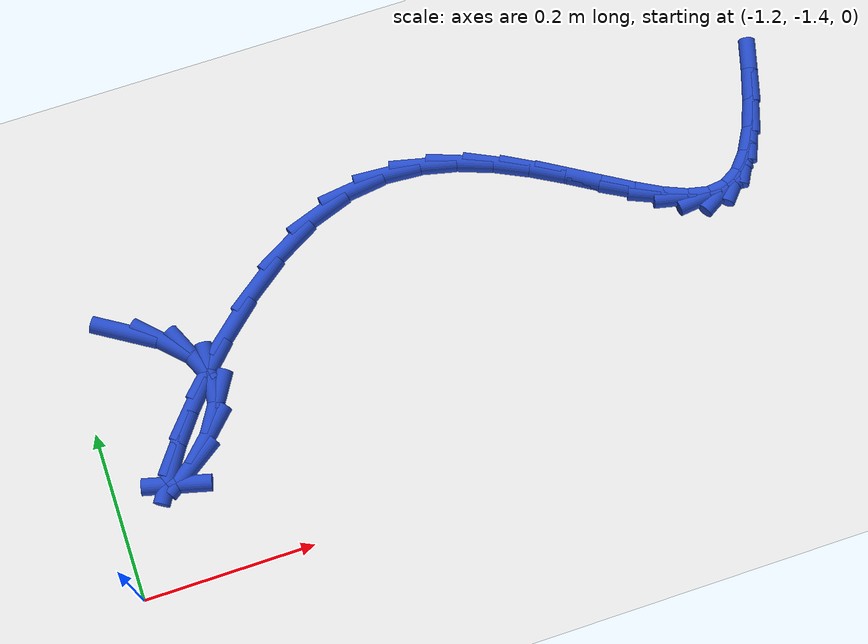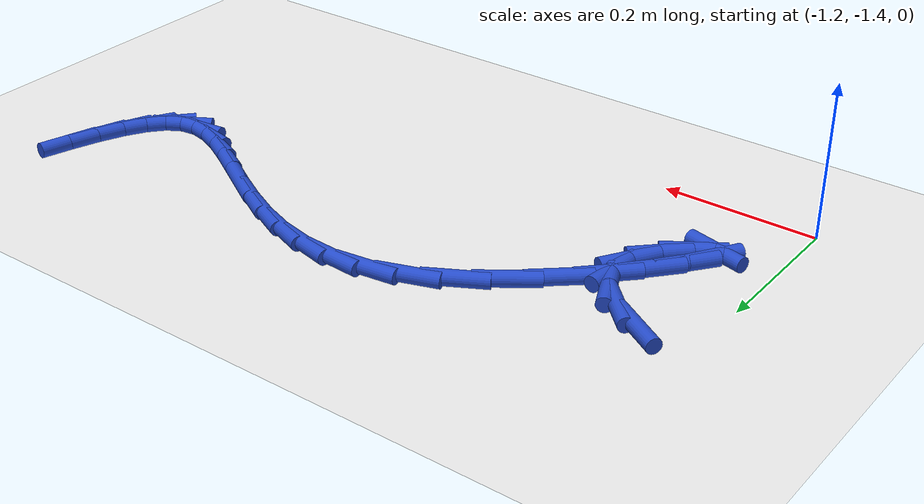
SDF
<sdf version="1.6">
 <world name="default">
  <model name="ground_plane">
   <static>1</static>
   <link name="link">
    <collision name="collision">
     <geometry><plane><normal>0 0 1</normal><size>100 100</size></plane></geometry>
     <surface><friction><ode><mu>100</mu><mu2>50</mu2></ode></friction></surface>
    </collision>
    <visual name="visual">
     <cast_shadows>0</cast_shadows>
     <geometry><plane><normal>0 0 1</normal><size>100 100</size></plane></geometry>
     <material>
      <script><uri>file://media/materials/scripts/gazebo.material</uri><name>Gazebo/WhiteGlow</name></script>
     </material>
    </visual>
   </link>
  </model>
  <model name="line">
   <link name="link_208">
    <pose>-1.1342543918073766 -1.0970284678272373 0.01 0 1.57 -0.5603026188784264</pose>
    <collision name="collision">
     <geometry><cylinder><radius>0.01</radius><length>0.08</length></cylinder></geometry>
    </collision>
    <visual name="visual">
     <material>
      <script><name>Gazebo/Blue</name><uri>file://media/materials/scripts/gazebo.material</uri></script>
     </material>
     <geometry><cylinder><radius>0.01</radius><length>0.08</length></cylinder></geometry>
    </visual>
   </link>
   <link name="link_209">
    <pose>-1.096617735630286 -1.1206406213390705 0.01 0 1.57 -0.7941471250035296</pose>
    <collision name="collision">
     <geometry><cylinder><radius>0.01</radius><length>0.08</length></cylinder></geometry>
    </collision>
    <visual name="visual">
     <material>
      <script><name>Gazebo/Blue</name><uri>file://media/materials/scripts/gazebo.material</uri></script>
     </material>
     <geometry><cylinder><radius>0.01</radius><length>0.08</length></cylinder></geometry>
    </visual>
   </link>
   <link name="link_210">
    <pose>-1.0695944447547516 -1.1481409494351724 0.01 0 1.57 -1.1514216317182593</pose>
    <collision name="collision">
     <geometry><cylinder><radius>0.01</radius><length>0.08</length></cylinder></geometry>
    </collision>
    <visual name="visual">
     <material>
      <script><name>Gazebo/Blue</name><uri>file://media/materials/scripts/gazebo.material</uri></script>
     </material>
     <geometry><cylinder><radius>0.01</radius><length>0.08</length></cylinder></geometry>
    </visual>
   </link>
   <link name="link_211">
    <pose>-1.0559744984766621 -1.178691086998371 0.01 0 1.57 1.492408639524627</pose>
    <collision name="collision">
     <geometry><cylinder><radius>0.01</radius><length>0.08</length></cylinder></geometry>
    </collision>
    <visual name="visual">
     <material>
      <script><name>Gazebo/Blue</name><uri>file://media/materials/scripts/gazebo.material</uri></script>
     </material>
     <geometry><cylinder><radius>0.01</radius><length>0.08</length></cylinder></geometry>
    </visual>
   </link>
   <link name="link_212">
    <pose>-1.0585478760919094 -1.211452668911493 0.01 0 1.57 1.0314952925773364</pose>
    <collision name="collision">
     <geometry><cylinder><radius>0.01</radius><length>0.08</length></cylinder></geometry>
    </collision>
    <visual name="visual">
     <material>
      <script><name>Gazebo/Blue</name><uri>file://media/materials/scripts/gazebo.material</uri></script>
     </material>
     <geometry><cylinder><radius>0.01</radius><length>0.08</length></cylinder></geometry>
    </visual>
   </link>
   <link name="link_213">
    <pose>-1.0785935354494112 -1.2449469586422726 0.01 0 1.57 0.790767604849427</pose>
    <collision name="collision">
     <geometry><cylinder><radius>0.01</radius><length>0.08</length></cylinder></geometry>
    </collision>
    <visual name="visual">
     <material>
      <script><name>Gazebo/Blue</name><uri>file://media/materials/scripts/gazebo.material</uri></script>
     </material>
     <geometry><cylinder><radius>0.01</radius><length>0.08</length></cylinder></geometry>
    </visual>
   </link>
   <link name="link_214">
    <pose>-1.1063724380838378 -1.2730257889859664 0.01 0 1.57 0.6049885973328921</pose>
    <collision name="collision">
     <geometry><cylinder><radius>0.01</radius><length>0.08</length></cylinder></geometry>
    </collision>
    <visual name="visual">
     <material>
      <script><name>Gazebo/Blue</name><uri>file://media/materials/scripts/gazebo.material</uri></script>
     </material>
     <geometry><cylinder><radius>0.01</radius><length>0.08</length></cylinder></geometry>
    </visual>
   </link>
   <link name="link_215">
    <pose>-1.1275071463081574 -1.2876401316958577 0.01 0 1.57 -0.2515229578689082</pose>
    <collision name="collision">
     <geometry><cylinder><radius>0.01</radius><length>0.08</length></cylinder></geometry>
    </collision>
    <visual name="visual">
     <material>
      <script><name>Gazebo/Blue</name><uri>file://media/materials/scripts/gazebo.material</uri></script>
     </material>
     <geometry><cylinder><radius>0.01</radius><length>0.08</length></cylinder></geometry>
    </visual>
   </link>
   <link name="link_217">
    <pose>-1.1296110103170298 -1.2700949534111823 0.01 0 1.57 1.0206371657522777</pose>
    <collision name="collision">
     <geometry><cylinder><radius>0.01</radius><length>0.08</length></cylinder></geometry>
    </collision>
    <visual name="visual">
     <material>
      <script><name>Gazebo/Blue</name><uri>file://media/materials/scripts/gazebo.material</uri></script>
     </material>
     <geometry><cylinder><radius>0.01</radius><length>0.08</length></cylinder></geometry>
    </visual>
   </link>
   <link name="link_218">
    <pose>-1.11343461227232 -1.2437199996573194 0.01 0 1.57 0.9287772279186192</pose>
    <collision name="collision">
     <geometry><cylinder><radius>0.01</radius><length>0.08</length></cylinder></geometry>
    </collision>
    <visual name="visual">
     <material>
      <script><name>Gazebo/Blue</name><uri>file://media/materials/scripts/gazebo.material</uri></script>
     </material>
     <geometry><cylinder><radius>0.01</radius><length>0.08</length></cylinder></geometry>
    </visual>
   </link>
   <link name="link_219">
    <pose>-1.087982471433947 -1.209678825660896 0.01 0 1.57 0.8631115667853644</pose>
    <collision name="collision">
     <geometry><cylinder><radius>0.01</radius><length>0.08</length></cylinder></geometry>
    </collision>
    <visual name="visual">
     <material>
      <script><name>Gazebo/Blue</name><uri>file://media/materials/scripts/gazebo.material</uri></script>
     </material>
     <geometry><cylinder><radius>0.01</radius><length>0.08</length></cylinder></geometry>
    </visual>
   </link>
   <link name="link_220">
    <pose>-1.054911945731234 -1.1710229485457504 0.01 0 1.57 0.800381284939154</pose>
    <collision name="collision">
     <geometry><cylinder><radius>0.01</radius><length>0.08</length></cylinder></geometry>
    </collision>
    <visual name="visual">
     <material>
      <script><name>Gazebo/Blue</name><uri>file://media/materials/scripts/gazebo.material</uri></script>
     </material>
     <geometry><cylinder><radius>0.01</radius><length>0.08</length></cylinder></geometry>
    </visual>
   </link>
   <link name="link_221">
    <pose>-1.0158803930935076 -1.1308038854357259 0.01 0 1.57 0.729349742640319</pose>
    <collision name="collision">
     <geometry><cylinder><radius>0.01</radius><length>0.08</length></cylinder></geometry>
    </collision>
    <visual name="visual">
     <material>
      <script><name>Gazebo/Blue</name><uri>file://media/materials/scripts/gazebo.material</uri></script>
     </material>
     <geometry><cylinder><radius>0.01</radius><length>0.08</length></cylinder></geometry>
    </visual>
   </link>
   <link name="link_222">
    <pose>-0.9725451714500905 -1.0920731534546606 0.01 0 1.57 0.6393787298168541</pose>
    <collision name="collision">
     <geometry><cylinder><radius>0.01</radius><length>0.08</length></cylinder></geometry>
    </collision>
    <visual name="visual">
     <material>
      <script><name>Gazebo/Blue</name><uri>file://media/materials/scripts/gazebo.material</uri></script>
     </material>
     <geometry><cylinder><radius>0.01</radius><length>0.08</length></cylinder></geometry>
    </visual>
   </link>
   <link name="link_223">
    <pose>-0.9265636387303101 -1.0578822697263988 0.01 0 1.57 0.5152735508346965</pose>
    <collision name="collision">
     <geometry><cylinder><radius>0.01</radius><length>0.08</length></cylinder></geometry>
    </collision>
    <visual name="visual">
     <material>
      <script><name>Gazebo/Blue</name><uri>file://media/materials/scripts/gazebo.material</uri></script>
     </material>
     <geometry><cylinder><radius>0.01</radius><length>0.08</length></cylinder></geometry>
    </visual>
   </link>
   <link name="link_224">
    <pose>-0.8795931528634882 -1.0312827513747782 0.01 0 1.57 0.3364772931224426</pose>
    <collision name="collision">
     <geometry><cylinder><radius>0.01</radius><length>0.08</length></cylinder></geometry>
    </collision>
    <visual name="visual">
     <material>
      <script><name>Gazebo/Blue</name><uri>file://media/materials/scripts/gazebo.material</uri></script>
     </material>
     <geometry><cylinder><radius>0.01</radius><length>0.08</length></cylinder></geometry>
    </visual>
   </link>
   <link name="link_225">
    <pose>-0.8332044217756425 -1.0150569802425076 0.01 0 1.57 0.12912181666007655</pose>
    <collision name="collision">
     <geometry><cylinder><radius>0.01</radius><length>0.08</length></cylinder></geometry>
    </collision>
    <visual name="visual">
     <material>
      <script><name>Gazebo/Blue</name><uri>file://media/materials/scripts/gazebo.material</uri></script>
     </material>
     <geometry><cylinder><radius>0.01</radius><length>0.08</length></cylinder></geometry>
    </visual>
   </link>
   <link name="link_226">
    <pose>-0.7880696190569849 -1.0091964866796577 0.01 0 1.57 -0.06493284704297393</pose>
    <collision name="collision">
     <geometry><cylinder><radius>0.01</radius><length>0.08</length></cylinder></geometry>
    </collision>
    <visual name="visual">
     <material>
      <script><name>Gazebo/Blue</name><uri>file://media/materials/scripts/gazebo.material</uri></script>
     </material>
     <geometry><cylinder><radius>0.01</radius><length>0.08</length></cylinder></geometry>
    </visual>
   </link>
   <link name="link_227">
    <pose>-0.7443290086769403 -1.0120406874776178 0.01 0 1.57 -0.2296141587684884</pose>
    <collision name="collision">
     <geometry><cylinder><radius>0.01</radius><length>0.08</length></cylinder></geometry>
    </collision>
    <visual name="visual">
     <material>
      <script><name>Gazebo/Blue</name><uri>file://media/materials/scripts/gazebo.material</uri></script>
     </material>
     <geometry><cylinder><radius>0.01</radius><length>0.08</length></cylinder></geometry>
    </visual>
   </link>
   <link name="link_228">
    <pose>-0.7021159087857479 -1.0219074256836453 0.01 0 1.57 -0.3587710365409418</pose>
    <collision name="collision">
     <geometry><cylinder><radius>0.01</radius><length>0.08</length></cylinder></geometry>
    </collision>
    <visual name="visual">
     <material>
      <script><name>Gazebo/Blue</name><uri>file://media/materials/scripts/gazebo.material</uri></script>
     </material>
     <geometry><cylinder><radius>0.01</radius><length>0.08</length></cylinder></geometry>
    </visual>
   </link>
   <link name="link_229">
    <pose>-0.6615636375336418 -1.0371145443449994 0.01 0 1.57 -0.4529878843886531</pose>
    <collision name="collision">
     <geometry><cylinder><radius>0.01</radius><length>0.08</length></cylinder></geometry>
    </collision>
    <visual name="visual">
     <material>
      <script><name>Gazebo/Blue</name><uri>file://media/materials/scripts/gazebo.material</uri></script>
     </material>
     <geometry><cylinder><radius>0.01</radius><length>0.08</length></cylinder></geometry>
    </visual>
   </link>
   <link name="link_230">
    <pose>-0.6228055130708612 -1.0559798865089374 0.01 0 1.57 -0.5149466663959301</pose>
    <collision name="collision">
     <geometry><cylinder><radius>0.01</radius><length>0.08</length></cylinder></geometry>
    </collision>
    <visual name="visual">
     <material>
      <script><name>Gazebo/Blue</name><uri>file://media/materials/scripts/gazebo.material</uri></script>
     </material>
     <geometry><cylinder><radius>0.01</radius><length>0.08</length></cylinder></geometry>
    </visual>
   </link>
   <link name="link_231">
    <pose>-0.5859748535476399 -1.0768212952227174 0.01 0 1.57 -0.5461810023948789</pose>
    <collision name="collision">
     <geometry><cylinder><radius>0.01</radius><length>0.08</length></cylinder></geometry>
    </collision>
    <visual name="visual">
     <material>
      <script><name>Gazebo/Blue</name><uri>file://media/materials/scripts/gazebo.material</uri></script>
     </material>
     <geometry><cylinder><radius>0.01</radius><length>0.08</length></cylinder></geometry>
    </visual>
   </link>
   <link name="link_232">
    <pose>-0.5512049771142169 -1.097956613533597 0.01 0 1.57 -0.5449576862633349</pose>
    <collision name="collision">
     <geometry><cylinder><radius>0.01</radius><length>0.08</length></cylinder></geometry>
    </collision>
    <visual name="visual">
     <material>
      <script><name>Gazebo/Blue</name><uri>file://media/materials/scripts/gazebo.material</uri></script>
     </material>
     <geometry><cylinder><radius>0.01</radius><length>0.08</length></cylinder></geometry>
    </visual>
   </link>
   <link name="link_233">
    <pose>-0.5186292019208267 -1.1177036844888357 0.01 0 1.57 -0.5038597104270608</pose>
    <collision name="collision">
     <geometry><cylinder><radius>0.01</radius><length>0.08</length></cylinder></geometry>
    </collision>
    <visual name="visual">
     <material>
      <script><name>Gazebo/Blue</name><uri>file://media/materials/scripts/gazebo.material</uri></script>
     </material>
     <geometry><cylinder><radius>0.01</radius><length>0.08</length></cylinder></geometry>
    </visual>
   </link>
   <link name="link_234">
    <pose>-0.4883808461177081 -1.13438035113569 0.01 0 1.57 -0.40535157571427266</pose>
    <collision name="collision">
     <geometry><cylinder><radius>0.01</radius><length>0.08</length></cylinder></geometry>
    </collision>
    <visual name="visual">
     <material>
      <script><name>Gazebo/Blue</name><uri>file://media/materials/scripts/gazebo.material</uri></script>
     </material>
     <geometry><cylinder><radius>0.01</radius><length>0.08</length></cylinder></geometry>
    </visual>
   </link>
   <link name="link_235">
    <pose>-0.46059322785509615 -1.1463044565214187 0.01 0 1.57 -0.2145353789104227</pose>
    <collision name="collision">
     <geometry><cylinder><radius>0.01</radius><length>0.08</length></cylinder></geometry>
    </collision>
    <visual name="visual">
     <material>
      <script><name>Gazebo/Blue</name><uri>file://media/materials/scripts/gazebo.material</uri></script>
     </material>
     <geometry><cylinder><radius>0.01</radius><length>0.08</length></cylinder></geometry>
    </visual>
   </link>
   <link name="link_236">
    <pose>-0.4353996652832271 -1.15179384369328 0.01 0 1.57 0.11636151599918443</pose>
    <collision name="collision">
     <geometry><cylinder><radius>0.01</radius><length>0.08</length></cylinder></geometry>
    </collision>
    <visual name="visual">
     <material>
      <script><name>Gazebo/Blue</name><uri>file://media/materials/scripts/gazebo.material</uri></script>
     </material>
     <geometry><cylinder><radius>0.01</radius><length>0.08</length></cylinder></geometry>
    </visual>
   </link>
   <link name="link_237">
    <pose>-0.4129332205311321 -1.1491677509762985 0.01 0 1.57 0.5357618753375927</pose>
    <collision name="collision">
     <geometry><cylinder><radius>0.01</radius><length>0.08</length></cylinder></geometry>
    </collision>
    <visual name="visual">
     <material>
      <script><name>Gazebo/Blue</name><uri>file://media/materials/scripts/gazebo.material</uri></script>
     </material>
     <geometry><cylinder><radius>0.01</radius><length>0.08</length></cylinder></geometry>
    </visual>
   </link>
   <link name="link_238">
    <pose>-0.39319749119207315 -1.1374509792961307 0.01 0 1.57 0.8548176192833911</pose>
    <collision name="collision">
     <geometry><cylinder><radius>0.01</radius><length>0.08</length></cylinder></geometry>
    </collision>
    <visual name="visual">
     <material>
      <script><name>Gazebo/Blue</name><uri>file://media/materials/scripts/gazebo.material</uri></script>
     </material>
     <geometry><cylinder><radius>0.01</radius><length>0.08</length></cylinder></geometry>
    </visual>
   </link>
   <link name="link_239">
    <pose>-0.3758565994506485 -1.1175184204219988 0.01 0 1.57 1.0537979569971085</pose>
    <collision name="collision">
     <geometry><cylinder><radius>0.01</radius><length>0.08</length></cylinder></geometry>
    </collision>
    <visual name="visual">
     <material>
      <script><name>Gazebo/Blue</name><uri>file://media/materials/scripts/gazebo.material</uri></script>
     </material>
     <geometry><cylinder><radius>0.01</radius><length>0.08</length></cylinder></geometry>
    </visual>
   </link>
   <link name="link_240">
    <pose>-0.36051970100057257 -1.0905445253809876 0.01 0 1.57 1.17496547493378</pose>
    <collision name="collision">
     <geometry><cylinder><radius>0.01</radius><length>0.08</length></cylinder></geometry>
    </collision>
    <visual name="visual">
     <material>
      <script><name>Gazebo/Blue</name><uri>file://media/materials/scripts/gazebo.material</uri></script>
     </material>
     <geometry><cylinder><radius>0.01</radius><length>0.08</length></cylinder></geometry>
    </visual>
   </link>
   <link name="link_241">
    <pose>-0.3467959515355616 -1.0577037452001856 0.01 0 1.57 1.2492766251817071</pose>
    <collision name="collision">
     <geometry><cylinder><radius>0.01</radius><length>0.08</length></cylinder></geometry>
    </collision>
    <visual name="visual">
     <material>
      <script><name>Gazebo/Blue</name><uri>file://media/materials/scripts/gazebo.material</uri></script>
     </material>
     <geometry><cylinder><radius>0.01</radius><length>0.08</length></cylinder></geometry>
    </visual>
   </link>
   <link name="link_242">
    <pose>-0.33429450674933003 -1.020170530906677 0.01 0 1.57 1.2938243337368047</pose>
    <collision name="collision">
     <geometry><cylinder><radius>0.01</radius><length>0.08</length></cylinder></geometry>
    </collision>
    <visual name="visual">
     <material>
      <script><name>Gazebo/Blue</name><uri>file://media/materials/scripts/gazebo.material</uri></script>
     </material>
     <geometry><cylinder><radius>0.01</radius><length>0.08</length></cylinder></geometry>
    </visual>
   </link>
  </model>
 </world>
</sdf>
